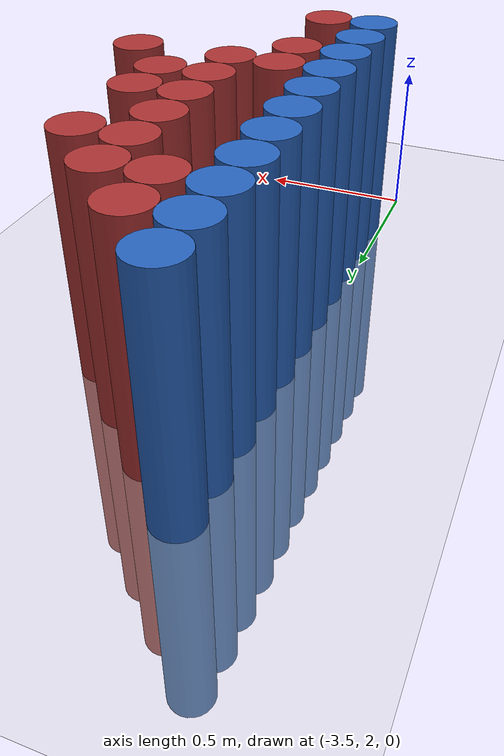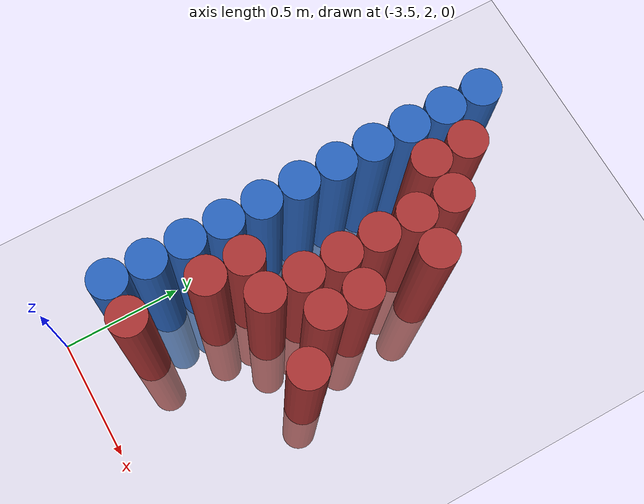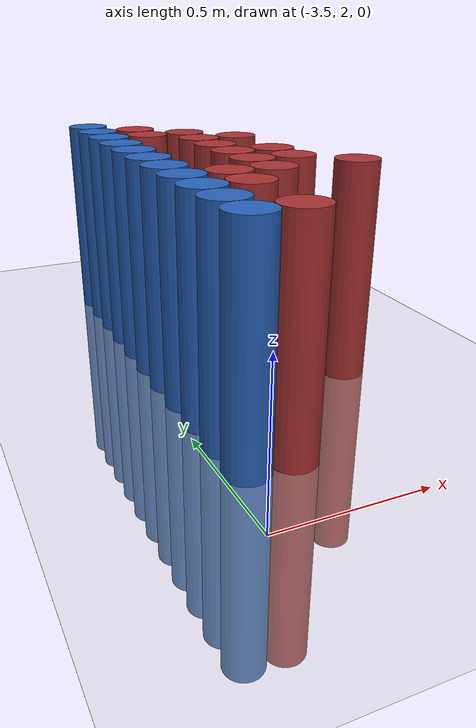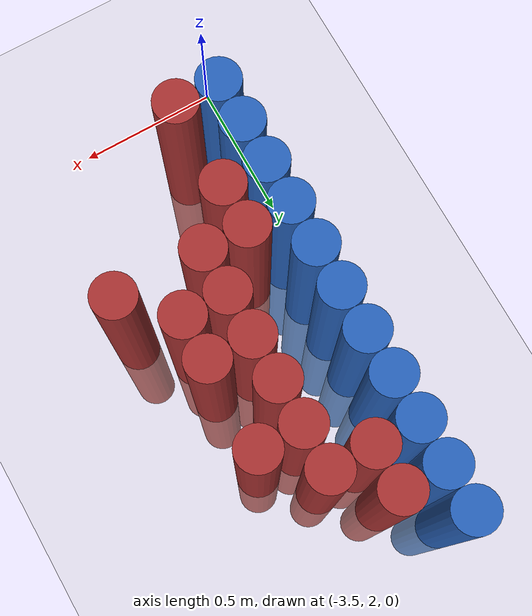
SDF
<sdf version="1.6">
 <world name="default">
  <model name="ground_plane">
   <static>1</static>
   <link name="link">
    <collision name="collision">
     <geometry><plane><normal>0 0 1</normal><size>100 100</size></plane></geometry>
     <surface><friction><ode><mu>100</mu><mu2>50</mu2></ode></friction></surface>
    </collision>
    <visual name="visual">
     <cast_shadows>0</cast_shadows>
     <geometry><plane><normal>0 0 1</normal><size>100 100</size></plane></geometry>
     <material>
      <script><uri>file://media/materials/scripts/gazebo.material</uri><name>Gazebo/Grey</name></script>
     </material>
    </visual>
   </link>
  </model>
  <model name="unit_cylinder_145">
   <static>1</static>
   <pose>-3.425000 2.275000 0.000000 0.000000 0.000000 0.000000</pose>
   <link name="link">
    <inertial>
     <mass>1</mass>
     <inertia><ixx>0.145833</ixx><ixy>0</ixy><ixz>0</ixz><iyy>0.145833</iyy><iyz>0</iyz><izz>0.125</izz></inertia>
    </inertial>
    <collision name="collision">
     <geometry><cylinder><radius>0.075000</radius><length>1.5</length></cylinder></geometry>
    </collision>
    <visual name="visual">
     <geometry><cylinder><radius>0.075000</radius><length>1.5</length></cylinder></geometry>
     <material>
      <ambient>0.152000 0.379000 0.720000 1</ambient>
      <diffuse>0.152000 0.379000 0.720000 1</diffuse>
     </material>
     <material>
      <script><name>Gazebo/Grey</name><uri>file://media/materials/scripts/gazebo.material</uri></script>
     </material>
    </visual>
   </link>
  </model>
  <model name="unit_cylinder_147">
   <static>1</static>
   <pose>-3.425000 2.425000 0.000000 0.000000 0.000000 0.000000</pose>
   <link name="link">
    <inertial>
     <mass>1</mass>
     <inertia><ixx>0.145833</ixx><ixy>0</ixy><ixz>0</ixz><iyy>0.145833</iyy><iyz>0</iyz><izz>0.125</izz></inertia>
    </inertial>
    <collision name="collision">
     <geometry><cylinder><radius>0.075000</radius><length>1.5</length></cylinder></geometry>
    </collision>
    <visual name="visual">
     <geometry><cylinder><radius>0.075000</radius><length>1.5</length></cylinder></geometry>
     <material>
      <ambient>0.152000 0.379000 0.720000 1</ambient>
      <diffuse>0.152000 0.379000 0.720000 1</diffuse>
     </material>
     <material>
      <script><name>Gazebo/Grey</name><uri>file://media/materials/scripts/gazebo.material</uri></script>
     </material>
    </visual>
   </link>
  </model>
  <model name="unit_cylinder_149">
   <static>1</static>
   <pose>-3.425000 2.575000 0.000000 0.000000 0.000000 0.000000</pose>
   <link name="link">
    <inertial>
     <mass>1</mass>
     <inertia><ixx>0.145833</ixx><ixy>0</ixy><ixz>0</ixz><iyy>0.145833</iyy><iyz>0</iyz><izz>0.125</izz></inertia>
    </inertial>
    <collision name="collision">
     <geometry><cylinder><radius>0.075000</radius><length>1.5</length></cylinder></geometry>
    </collision>
    <visual name="visual">
     <geometry><cylinder><radius>0.075000</radius><length>1.5</length></cylinder></geometry>
     <material>
      <ambient>0.152000 0.379000 0.720000 1</ambient>
      <diffuse>0.152000 0.379000 0.720000 1</diffuse>
     </material>
     <material>
      <script><name>Gazebo/Grey</name><uri>file://media/materials/scripts/gazebo.material</uri></script>
     </material>
    </visual>
   </link>
  </model>
  <model name="unit_cylinder_151">
   <static>1</static>
   <pose>-3.425000 2.725000 0.000000 0.000000 0.000000 0.000000</pose>
   <link name="link">
    <inertial>
     <mass>1</mass>
     <inertia><ixx>0.145833</ixx><ixy>0</ixy><ixz>0</ixz><iyy>0.145833</iyy><iyz>0</iyz><izz>0.125</izz></inertia>
    </inertial>
    <collision name="collision">
     <geometry><cylinder><radius>0.075000</radius><length>1.5</length></cylinder></geometry>
    </collision>
    <visual name="visual">
     <geometry><cylinder><radius>0.075000</radius><length>1.5</length></cylinder></geometry>
     <material>
      <ambient>0.152000 0.379000 0.720000 1</ambient>
      <diffuse>0.152000 0.379000 0.720000 1</diffuse>
     </material>
     <material>
      <script><name>Gazebo/Grey</name><uri>file://media/materials/scripts/gazebo.material</uri></script>
     </material>
    </visual>
   </link>
  </model>
  <model name="unit_cylinder_153">
   <static>1</static>
   <pose>-3.425000 2.875000 0.000000 0.000000 0.000000 0.000000</pose>
   <link name="link">
    <inertial>
     <mass>1</mass>
     <inertia><ixx>0.145833</ixx><ixy>0</ixy><ixz>0</ixz><iyy>0.145833</iyy><iyz>0</iyz><izz>0.125</izz></inertia>
    </inertial>
    <collision name="collision">
     <geometry><cylinder><radius>0.075000</radius><length>1.5</length></cylinder></geometry>
    </collision>
    <visual name="visual">
     <geometry><cylinder><radius>0.075000</radius><length>1.5</length></cylinder></geometry>
     <material>
      <ambient>0.152000 0.379000 0.720000 1</ambient>
      <diffuse>0.152000 0.379000 0.720000 1</diffuse>
     </material>
     <material>
      <script><name>Gazebo/Grey</name><uri>file://media/materials/scripts/gazebo.material</uri></script>
     </material>
    </visual>
   </link>
  </model>
  <model name="unit_cylinder_155">
   <static>1</static>
   <pose>-3.425000 3.025000 0.000000 0.000000 0.000000 0.000000</pose>
   <link name="link">
    <inertial>
     <mass>1</mass>
     <inertia><ixx>0.145833</ixx><ixy>0</ixy><ixz>0</ixz><iyy>0.145833</iyy><iyz>0</iyz><izz>0.125</izz></inertia>
    </inertial>
    <collision name="collision">
     <geometry><cylinder><radius>0.075000</radius><length>1.5</length></cylinder></geometry>
    </collision>
    <visual name="visual">
     <geometry><cylinder><radius>0.075000</radius><length>1.5</length></cylinder></geometry>
     <material>
      <ambient>0.152000 0.379000 0.720000 1</ambient>
      <diffuse>0.152000 0.379000 0.720000 1</diffuse>
     </material>
     <material>
      <script><name>Gazebo/Grey</name><uri>file://media/materials/scripts/gazebo.material</uri></script>
     </material>
    </visual>
   </link>
  </model>
  <model name="unit_cylinder_157">
   <static>1</static>
   <pose>-3.425000 3.175000 0.000000 0.000000 0.000000 0.000000</pose>
   <link name="link">
    <inertial>
     <mass>1</mass>
     <inertia><ixx>0.145833</ixx><ixy>0</ixy><ixz>0</ixz><iyy>0.145833</iyy><iyz>0</iyz><izz>0.125</izz></inertia>
    </inertial>
    <collision name="collision">
     <geometry><cylinder><radius>0.075000</radius><length>1.5</length></cylinder></geometry>
    </collision>
    <visual name="visual">
     <geometry><cylinder><radius>0.075000</radius><length>1.5</length></cylinder></geometry>
     <material>
      <ambient>0.152000 0.379000 0.720000 1</ambient>
      <diffuse>0.152000 0.379000 0.720000 1</diffuse>
     </material>
     <material>
      <script><name>Gazebo/Grey</name><uri>file://media/materials/scripts/gazebo.material</uri></script>
     </material>
    </visual>
   </link>
  </model>
  <model name="unit_cylinder_159">
   <static>1</static>
   <pose>-3.425000 3.325000 0.000000 0.000000 0.000000 0.000000</pose>
   <link name="link">
    <inertial>
     <mass>1</mass>
     <inertia><ixx>0.145833</ixx><ixy>0</ixy><ixz>0</ixz><iyy>0.145833</iyy><iyz>0</iyz><izz>0.125</izz></inertia>
    </inertial>
    <collision name="collision">
     <geometry><cylinder><radius>0.075000</radius><length>1.5</length></cylinder></geometry>
    </collision>
    <visual name="visual">
     <geometry><cylinder><radius>0.075000</radius><length>1.5</length></cylinder></geometry>
     <material>
      <ambient>0.152000 0.379000 0.720000 1</ambient>
      <diffuse>0.152000 0.379000 0.720000 1</diffuse>
     </material>
     <material>
      <script><name>Gazebo/Grey</name><uri>file://media/materials/scripts/gazebo.material</uri></script>
     </material>
    </visual>
   </link>
  </model>
  <model name="unit_cylinder_161">
   <static>1</static>
   <pose>-3.425000 3.475000 0.000000 0.000000 0.000000 0.000000</pose>
   <link name="link">
    <inertial>
     <mass>1</mass>
     <inertia><ixx>0.145833</ixx><ixy>0</ixy><ixz>0</ixz><iyy>0.145833</iyy><iyz>0</iyz><izz>0.125</izz></inertia>
    </inertial>
    <collision name="collision">
     <geometry><cylinder><radius>0.075000</radius><length>1.5</length></cylinder></geometry>
    </collision>
    <visual name="visual">
     <geometry><cylinder><radius>0.075000</radius><length>1.5</length></cylinder></geometry>
     <material>
      <ambient>0.152000 0.379000 0.720000 1</ambient>
      <diffuse>0.152000 0.379000 0.720000 1</diffuse>
     </material>
     <material>
      <script><name>Gazebo/Grey</name><uri>file://media/materials/scripts/gazebo.material</uri></script>
     </material>
    </visual>
   </link>
  </model>
  <model name="unit_cylinder_163">
   <static>1</static>
   <pose>-3.425000 3.625000 0.000000 0.000000 0.000000 0.000000</pose>
   <link name="link">
    <inertial>
     <mass>1</mass>
     <inertia><ixx>0.145833</ixx><ixy>0</ixy><ixz>0</ixz><iyy>0.145833</iyy><iyz>0</iyz><izz>0.125</izz></inertia>
    </inertial>
    <collision name="collision">
     <geometry><cylinder><radius>0.075000</radius><length>1.5</length></cylinder></geometry>
    </collision>
    <visual name="visual">
     <geometry><cylinder><radius>0.075000</radius><length>1.5</length></cylinder></geometry>
     <material>
      <ambient>0.152000 0.379000 0.720000 1</ambient>
      <diffuse>0.152000 0.379000 0.720000 1</diffuse>
     </material>
     <material>
      <script><name>Gazebo/Grey</name><uri>file://media/materials/scripts/gazebo.material</uri></script>
     </material>
    </visual>
   </link>
  </model>
  <model name="unit_cylinder_165">
   <static>1</static>
   <pose>-3.425000 3.775000 0.000000 0.000000 0.000000 0.000000</pose>
   <link name="link">
    <inertial>
     <mass>1</mass>
     <inertia><ixx>0.145833</ixx><ixy>0</ixy><ixz>0</ixz><iyy>0.145833</iyy><iyz>0</iyz><izz>0.125</izz></inertia>
    </inertial>
    <collision name="collision">
     <geometry><cylinder><radius>0.075000</radius><length>1.5</length></cylinder></geometry>
    </collision>
    <visual name="visual">
     <geometry><cylinder><radius>0.075000</radius><length>1.5</length></cylinder></geometry>
     <material>
      <ambient>0.152000 0.379000 0.720000 1</ambient>
      <diffuse>0.152000 0.379000 0.720000 1</diffuse>
     </material>
     <material>
      <script><name>Gazebo/Grey</name><uri>file://media/materials/scripts/gazebo.material</uri></script>
     </material>
    </visual>
   </link>
  </model>
  <model name="unit_cylinder_236">
   <static>1</static>
   <pose>-3.425000 2.275000 0.000000 0.000000 0.000000 0.000000</pose>
   <link name="link">
    <inertial>
     <mass>1</mass>
     <inertia><ixx>0.145833</ixx><ixy>0</ixy><ixz>0</ixz><iyy>0.145833</iyy><iyz>0</iyz><izz>0.125</izz></inertia>
    </inertial>
    <collision name="collision">
     <geometry><cylinder><radius>0.075000</radius><length>1.5</length></cylinder></geometry>
    </collision>
    <visual name="visual">
     <geometry><cylinder><radius>0.075000</radius><length>1.5</length></cylinder></geometry>
     <material>
      <ambient>0.152000 0.379000 0.720000 1</ambient>
      <diffuse>0.152000 0.379000 0.720000 1</diffuse>
     </material>
     <material>
      <script><name>Gazebo/Grey</name><uri>file://media/materials/scripts/gazebo.material</uri></script>
     </material>
    </visual>
   </link>
  </model>
  <model name="unit_cylinder_237">
   <static>1</static>
   <pose>-3.425000 2.425000 0.000000 0.000000 0.000000 0.000000</pose>
   <link name="link">
    <inertial>
     <mass>1</mass>
     <inertia><ixx>0.145833</ixx><ixy>0</ixy><ixz>0</ixz><iyy>0.145833</iyy><iyz>0</iyz><izz>0.125</izz></inertia>
    </inertial>
    <collision name="collision">
     <geometry><cylinder><radius>0.075000</radius><length>1.5</length></cylinder></geometry>
    </collision>
    <visual name="visual">
     <geometry><cylinder><radius>0.075000</radius><length>1.5</length></cylinder></geometry>
     <material>
      <ambient>0.152000 0.379000 0.720000 1</ambient>
      <diffuse>0.152000 0.379000 0.720000 1</diffuse>
     </material>
     <material>
      <script><name>Gazebo/Grey</name><uri>file://media/materials/scripts/gazebo.material</uri></script>
     </material>
    </visual>
   </link>
  </model>
  <model name="unit_cylinder_238">
   <static>1</static>
   <pose>-3.425000 2.575000 0.000000 0.000000 0.000000 0.000000</pose>
   <link name="link">
    <inertial>
     <mass>1</mass>
     <inertia><ixx>0.145833</ixx><ixy>0</ixy><ixz>0</ixz><iyy>0.145833</iyy><iyz>0</iyz><izz>0.125</izz></inertia>
    </inertial>
    <collision name="collision">
     <geometry><cylinder><radius>0.075000</radius><length>1.5</length></cylinder></geometry>
    </collision>
    <visual name="visual">
     <geometry><cylinder><radius>0.075000</radius><length>1.5</length></cylinder></geometry>
     <material>
      <ambient>0.152000 0.379000 0.720000 1</ambient>
      <diffuse>0.152000 0.379000 0.720000 1</diffuse>
     </material>
     <material>
      <script><name>Gazebo/Grey</name><uri>file://media/materials/scripts/gazebo.material</uri></script>
     </material>
    </visual>
   </link>
  </model>
  <model name="unit_cylinder_239">
   <static>1</static>
   <pose>-3.425000 2.725000 0.000000 0.000000 0.000000 0.000000</pose>
   <link name="link">
    <inertial>
     <mass>1</mass>
     <inertia><ixx>0.145833</ixx><ixy>0</ixy><ixz>0</ixz><iyy>0.145833</iyy><iyz>0</iyz><izz>0.125</izz></inertia>
    </inertial>
    <collision name="collision">
     <geometry><cylinder><radius>0.075000</radius><length>1.5</length></cylinder></geometry>
    </collision>
    <visual name="visual">
     <geometry><cylinder><radius>0.075000</radius><length>1.5</length></cylinder></geometry>
     <material>
      <ambient>0.152000 0.379000 0.720000 1</ambient>
      <diffuse>0.152000 0.379000 0.720000 1</diffuse>
     </material>
     <material>
      <script><name>Gazebo/Grey</name><uri>file://media/materials/scripts/gazebo.material</uri></script>
     </material>
    </visual>
   </link>
  </model>
  <model name="unit_cylinder_240">
   <static>1</static>
   <pose>-3.425000 2.875000 0.000000 0.000000 0.000000 0.000000</pose>
   <link name="link">
    <inertial>
     <mass>1</mass>
     <inertia><ixx>0.145833</ixx><ixy>0</ixy><ixz>0</ixz><iyy>0.145833</iyy><iyz>0</iyz><izz>0.125</izz></inertia>
    </inertial>
    <collision name="collision">
     <geometry><cylinder><radius>0.075000</radius><length>1.5</length></cylinder></geometry>
    </collision>
    <visual name="visual">
     <geometry><cylinder><radius>0.075000</radius><length>1.5</length></cylinder></geometry>
     <material>
      <ambient>0.152000 0.379000 0.720000 1</ambient>
      <diffuse>0.152000 0.379000 0.720000 1</diffuse>
     </material>
     <material>
      <script><name>Gazebo/Grey</name><uri>file://media/materials/scripts/gazebo.material</uri></script>
     </material>
    </visual>
   </link>
  </model>
  <model name="unit_cylinder_241">
   <static>1</static>
   <pose>-3.425000 3.025000 0.000000 0.000000 0.000000 0.000000</pose>
   <link name="link">
    <inertial>
     <mass>1</mass>
     <inertia><ixx>0.145833</ixx><ixy>0</ixy><ixz>0</ixz><iyy>0.145833</iyy><iyz>0</iyz><izz>0.125</izz></inertia>
    </inertial>
    <collision name="collision">
     <geometry><cylinder><radius>0.075000</radius><length>1.5</length></cylinder></geometry>
    </collision>
    <visual name="visual">
     <geometry><cylinder><radius>0.075000</radius><length>1.5</length></cylinder></geometry>
     <material>
      <ambient>0.152000 0.379000 0.720000 1</ambient>
      <diffuse>0.152000 0.379000 0.720000 1</diffuse>
     </material>
     <material>
      <script><name>Gazebo/Grey</name><uri>file://media/materials/scripts/gazebo.material</uri></script>
     </material>
    </visual>
   </link>
  </model>
  <model name="unit_cylinder_242">
   <static>1</static>
   <pose>-3.425000 3.175000 0.000000 0.000000 0.000000 0.000000</pose>
   <link name="link">
    <inertial>
     <mass>1</mass>
     <inertia><ixx>0.145833</ixx><ixy>0</ixy><ixz>0</ixz><iyy>0.145833</iyy><iyz>0</iyz><izz>0.125</izz></inertia>
    </inertial>
    <collision name="collision">
     <geometry><cylinder><radius>0.075000</radius><length>1.5</length></cylinder></geometry>
    </collision>
    <visual name="visual">
     <geometry><cylinder><radius>0.075000</radius><length>1.5</length></cylinder></geometry>
     <material>
      <ambient>0.152000 0.379000 0.720000 1</ambient>
      <diffuse>0.152000 0.379000 0.720000 1</diffuse>
     </material>
     <material>
      <script><name>Gazebo/Grey</name><uri>file://media/materials/scripts/gazebo.material</uri></script>
     </material>
    </visual>
   </link>
  </model>
  <model name="unit_cylinder_243">
   <static>1</static>
   <pose>-3.425000 3.325000 0.000000 0.000000 0.000000 0.000000</pose>
   <link name="link">
    <inertial>
     <mass>1</mass>
     <inertia><ixx>0.145833</ixx><ixy>0</ixy><ixz>0</ixz><iyy>0.145833</iyy><iyz>0</iyz><izz>0.125</izz></inertia>
    </inertial>
    <collision name="collision">
     <geometry><cylinder><radius>0.075000</radius><length>1.5</length></cylinder></geometry>
    </collision>
    <visual name="visual">
     <geometry><cylinder><radius>0.075000</radius><length>1.5</length></cylinder></geometry>
     <material>
      <ambient>0.152000 0.379000 0.720000 1</ambient>
      <diffuse>0.152000 0.379000 0.720000 1</diffuse>
     </material>
     <material>
      <script><name>Gazebo/Grey</name><uri>file://media/materials/scripts/gazebo.material</uri></script>
     </material>
    </visual>
   </link>
  </model>
  <model name="unit_cylinder_244">
   <static>1</static>
   <pose>-3.425000 3.475000 0.000000 0.000000 0.000000 0.000000</pose>
   <link name="link">
    <inertial>
     <mass>1</mass>
     <inertia><ixx>0.145833</ixx><ixy>0</ixy><ixz>0</ixz><iyy>0.145833</iyy><iyz>0</iyz><izz>0.125</izz></inertia>
    </inertial>
    <collision name="collision">
     <geometry><cylinder><radius>0.075000</radius><length>1.5</length></cylinder></geometry>
    </collision>
    <visual name="visual">
     <geometry><cylinder><radius>0.075000</radius><length>1.5</length></cylinder></geometry>
     <material>
      <ambient>0.152000 0.379000 0.720000 1</ambient>
      <diffuse>0.152000 0.379000 0.720000 1</diffuse>
     </material>
     <material>
      <script><name>Gazebo/Grey</name><uri>file://media/materials/scripts/gazebo.material</uri></script>
     </material>
    </visual>
   </link>
  </model>
  <model name="unit_cylinder_245">
   <static>1</static>
   <pose>-3.425000 3.625000 0.000000 0.000000 0.000000 0.000000</pose>
   <link name="link">
    <inertial>
     <mass>1</mass>
     <inertia><ixx>0.145833</ixx><ixy>0</ixy><ixz>0</ixz><iyy>0.145833</iyy><iyz>0</iyz><izz>0.125</izz></inertia>
    </inertial>
    <collision name="collision">
     <geometry><cylinder><radius>0.075000</radius><length>1.5</length></cylinder></geometry>
    </collision>
    <visual name="visual">
     <geometry><cylinder><radius>0.075000</radius><length>1.5</length></cylinder></geometry>
     <material>
      <ambient>0.152000 0.379000 0.720000 1</ambient>
      <diffuse>0.152000 0.379000 0.720000 1</diffuse>
     </material>
     <material>
      <script><name>Gazebo/Grey</name><uri>file://media/materials/scripts/gazebo.material</uri></script>
     </material>
    </visual>
   </link>
  </model>
  <model name="unit_cylinder_267">
   <static>1</static>
   <pose>-3.275000 2.275000 0.000000 0.000000 0.000000 0.000000</pose>
   <link name="link">
    <inertial>
     <mass>1</mass>
     <inertia><ixx>0.145833</ixx><ixy>0</ixy><ixz>0</ixz><iyy>0.145833</iyy><iyz>0</iyz><izz>0.125</izz></inertia>
    </inertial>
    <collision name="collision">
     <geometry><cylinder><radius>0.075000</radius><length>1.5</length></cylinder></geometry>
    </collision>
    <visual name="visual">
     <geometry><cylinder><radius>0.075000</radius><length>1.5</length></cylinder></geometry>
     <material>
      <ambient>0.648000 0.192000 0.192000 1</ambient>
      <diffuse>0.648000 0.192000 0.192000 1</diffuse>
     </material>
     <material>
      <script><name>Gazebo/Grey</name><uri>file://media/materials/scripts/gazebo.material</uri></script>
     </material>
    </visual>
   </link>
  </model>
  <model name="unit_cylinder_268">
   <static>1</static>
   <pose>-3.275000 2.575000 0.000000 0.000000 0.000000 0.000000</pose>
   <link name="link">
    <inertial>
     <mass>1</mass>
     <inertia><ixx>0.145833</ixx><ixy>0</ixy><ixz>0</ixz><iyy>0.145833</iyy><iyz>0</iyz><izz>0.125</izz></inertia>
    </inertial>
    <collision name="collision">
     <geometry><cylinder><radius>0.075000</radius><length>1.5</length></cylinder></geometry>
    </collision>
    <visual name="visual">
     <geometry><cylinder><radius>0.075000</radius><length>1.5</length></cylinder></geometry>
     <material>
      <ambient>0.648000 0.192000 0.192000 1</ambient>
      <diffuse>0.648000 0.192000 0.192000 1</diffuse>
     </material>
     <material>
      <script><name>Gazebo/Grey</name><uri>file://media/materials/scripts/gazebo.material</uri></script>
     </material>
    </visual>
   </link>
  </model>
  <model name="unit_cylinder_269">
   <static>1</static>
   <pose>-3.275000 2.725000 0.000000 0.000000 0.000000 0.000000</pose>
   <link name="link">
    <inertial>
     <mass>1</mass>
     <inertia><ixx>0.145833</ixx><ixy>0</ixy><ixz>0</ixz><iyy>0.145833</iyy><iyz>0</iyz><izz>0.125</izz></inertia>
    </inertial>
    <collision name="collision">
     <geometry><cylinder><radius>0.075000</radius><length>1.5</length></cylinder></geometry>
    </collision>
    <visual name="visual">
     <geometry><cylinder><radius>0.075000</radius><length>1.5</length></cylinder></geometry>
     <material>
      <ambient>0.648000 0.192000 0.192000 1</ambient>
      <diffuse>0.648000 0.192000 0.192000 1</diffuse>
     </material>
     <material>
      <script><name>Gazebo/Grey</name><uri>file://media/materials/scripts/gazebo.material</uri></script>
     </material>
    </visual>
   </link>
  </model>
  <model name="unit_cylinder_270">
   <static>1</static>
   <pose>-3.275000 3.475000 0.000000 0.000000 0.000000 0.000000</pose>
   <link name="link">
    <inertial>
     <mass>1</mass>
     <inertia><ixx>0.145833</ixx><ixy>0</ixy><ixz>0</ixz><iyy>0.145833</iyy><iyz>0</iyz><izz>0.125</izz></inertia>
    </inertial>
    <collision name="collision">
     <geometry><cylinder><radius>0.075000</radius><length>1.5</length></cylinder></geometry>
    </collision>
    <visual name="visual">
     <geometry><cylinder><radius>0.075000</radius><length>1.5</length></cylinder></geometry>
     <material>
      <ambient>0.648000 0.192000 0.192000 1</ambient>
      <diffuse>0.648000 0.192000 0.192000 1</diffuse>
     </material>
     <material>
      <script><name>Gazebo/Grey</name><uri>file://media/materials/scripts/gazebo.material</uri></script>
     </material>
    </visual>
   </link>
  </model>
  <model name="unit_cylinder_271">
   <static>1</static>
   <pose>-3.275000 3.625000 0.000000 0.000000 0.000000 0.000000</pose>
   <link name="link">
    <inertial>
     <mass>1</mass>
     <inertia><ixx>0.145833</ixx><ixy>0</ixy><ixz>0</ixz><iyy>0.145833</iyy><iyz>0</iyz><izz>0.125</izz></inertia>
    </inertial>
    <collision name="collision">
     <geometry><cylinder><radius>0.075000</radius><length>1.5</length></cylinder></geometry>
    </collision>
    <visual name="visual">
     <geometry><cylinder><radius>0.075000</radius><length>1.5</length></cylinder></geometry>
     <material>
      <ambient>0.648000 0.192000 0.192000 1</ambient>
      <diffuse>0.648000 0.192000 0.192000 1</diffuse>
     </material>
     <material>
      <script><name>Gazebo/Grey</name><uri>file://media/materials/scripts/gazebo.material</uri></script>
     </material>
    </visual>
   </link>
  </model>
  <model name="unit_cylinder_280">
   <static>1</static>
   <pose>-3.125000 2.725000 0.000000 0.000000 0.000000 0.000000</pose>
   <link name="link">
    <inertial>
     <mass>1</mass>
     <inertia><ixx>0.145833</ixx><ixy>0</ixy><ixz>0</ixz><iyy>0.145833</iyy><iyz>0</iyz><izz>0.125</izz></inertia>
    </inertial>
    <collision name="collision">
     <geometry><cylinder><radius>0.075000</radius><length>1.5</length></cylinder></geometry>
    </collision>
    <visual name="visual">
     <geometry><cylinder><radius>0.075000</radius><length>1.5</length></cylinder></geometry>
     <material>
      <ambient>0.648000 0.192000 0.192000 1</ambient>
      <diffuse>0.648000 0.192000 0.192000 1</diffuse>
     </material>
     <material>
      <script><name>Gazebo/Grey</name><uri>file://media/materials/scripts/gazebo.material</uri></script>
     </material>
    </visual>
   </link>
  </model>
  <model name="unit_cylinder_281">
   <static>1</static>
   <pose>-3.125000 2.875000 0.000000 0.000000 0.000000 0.000000</pose>
   <link name="link">
    <inertial>
     <mass>1</mass>
     <inertia><ixx>0.145833</ixx><ixy>0</ixy><ixz>0</ixz><iyy>0.145833</iyy><iyz>0</iyz><izz>0.125</izz></inertia>
    </inertial>
    <collision name="collision">
     <geometry><cylinder><radius>0.075000</radius><length>1.5</length></cylinder></geometry>
    </collision>
    <visual name="visual">
     <geometry><cylinder><radius>0.075000</radius><length>1.5</length></cylinder></geometry>
     <material>
      <ambient>0.648000 0.192000 0.192000 1</ambient>
      <diffuse>0.648000 0.192000 0.192000 1</diffuse>
     </material>
     <material>
      <script><name>Gazebo/Grey</name><uri>file://media/materials/scripts/gazebo.material</uri></script>
     </material>
    </visual>
   </link>
  </model>
  <model name="unit_cylinder_282">
   <static>1</static>
   <pose>-3.125000 3.025000 0.000000 0.000000 0.000000 0.000000</pose>
   <link name="link">
    <inertial>
     <mass>1</mass>
     <inertia><ixx>0.145833</ixx><ixy>0</ixy><ixz>0</ixz><iyy>0.145833</iyy><iyz>0</iyz><izz>0.125</izz></inertia>
    </inertial>
    <collision name="collision">
     <geometry><cylinder><radius>0.075000</radius><length>1.5</length></cylinder></geometry>
    </collision>
    <visual name="visual">
     <geometry><cylinder><radius>0.075000</radius><length>1.5</length></cylinder></geometry>
     <material>
      <ambient>0.648000 0.192000 0.192000 1</ambient>
      <diffuse>0.648000 0.192000 0.192000 1</diffuse>
     </material>
     <material>
      <script><name>Gazebo/Grey</name><uri>file://media/materials/scripts/gazebo.material</uri></script>
     </material>
    </visual>
   </link>
  </model>
  <model name="unit_cylinder_283">
   <static>1</static>
   <pose>-3.125000 3.175000 0.000000 0.000000 0.000000 0.000000</pose>
   <link name="link">
    <inertial>
     <mass>1</mass>
     <inertia><ixx>0.145833</ixx><ixy>0</ixy><ixz>0</ixz><iyy>0.145833</iyy><iyz>0</iyz><izz>0.125</izz></inertia>
    </inertial>
    <collision name="collision">
     <geometry><cylinder><radius>0.075000</radius><length>1.5</length></cylinder></geometry>
    </collision>
    <visual name="visual">
     <geometry><cylinder><radius>0.075000</radius><length>1.5</length></cylinder></geometry>
     <material>
      <ambient>0.648000 0.192000 0.192000 1</ambient>
      <diffuse>0.648000 0.192000 0.192000 1</diffuse>
     </material>
     <material>
      <script><name>Gazebo/Grey</name><uri>file://media/materials/scripts/gazebo.material</uri></script>
     </material>
    </visual>
   </link>
  </model>
  <model name="unit_cylinder_284">
   <static>1</static>
   <pose>-3.125000 3.325000 0.000000 0.000000 0.000000 0.000000</pose>
   <link name="link">
    <inertial>
     <mass>1</mass>
     <inertia><ixx>0.145833</ixx><ixy>0</ixy><ixz>0</ixz><iyy>0.145833</iyy><iyz>0</iyz><izz>0.125</izz></inertia>
    </inertial>
    <collision name="collision">
     <geometry><cylinder><radius>0.075000</radius><length>1.5</length></cylinder></geometry>
    </collision>
    <visual name="visual">
     <geometry><cylinder><radius>0.075000</radius><length>1.5</length></cylinder></geometry>
     <material>
      <ambient>0.648000 0.192000 0.192000 1</ambient>
      <diffuse>0.648000 0.192000 0.192000 1</diffuse>
     </material>
     <material>
      <script><name>Gazebo/Grey</name><uri>file://media/materials/scripts/gazebo.material</uri></script>
     </material>
    </visual>
   </link>
  </model>
  <model name="unit_cylinder_285">
   <static>1</static>
   <pose>-3.125000 3.475000 0.000000 0.000000 0.000000 0.000000</pose>
   <link name="link">
    <inertial>
     <mass>1</mass>
     <inertia><ixx>0.145833</ixx><ixy>0</ixy><ixz>0</ixz><iyy>0.145833</iyy><iyz>0</iyz><izz>0.125</izz></inertia>
    </inertial>
    <collision name="collision">
     <geometry><cylinder><radius>0.075000</radius><length>1.5</length></cylinder></geometry>
    </collision>
    <visual name="visual">
     <geometry><cylinder><radius>0.075000</radius><length>1.5</length></cylinder></geometry>
     <material>
      <ambient>0.648000 0.192000 0.192000 1</ambient>
      <diffuse>0.648000 0.192000 0.192000 1</diffuse>
     </material>
     <material>
      <script><name>Gazebo/Grey</name><uri>file://media/materials/scripts/gazebo.material</uri></script>
     </material>
    </visual>
   </link>
  </model>
  <model name="unit_cylinder_289">
   <static>1</static>
   <pose>-2.975000 2.875000 0.000000 0.000000 0.000000 0.000000</pose>
   <link name="link">
    <inertial>
     <mass>1</mass>
     <inertia><ixx>0.145833</ixx><ixy>0</ixy><ixz>0</ixz><iyy>0.145833</iyy><iyz>0</iyz><izz>0.125</izz></inertia>
    </inertial>
    <collision name="collision">
     <geometry><cylinder><radius>0.075000</radius><length>1.5</length></cylinder></geometry>
    </collision>
    <visual name="visual">
     <geometry><cylinder><radius>0.075000</radius><length>1.5</length></cylinder></geometry>
     <material>
      <ambient>0.648000 0.192000 0.192000 1</ambient>
      <diffuse>0.648000 0.192000 0.192000 1</diffuse>
     </material>
     <material>
      <script><name>Gazebo/Grey</name><uri>file://media/materials/scripts/gazebo.material</uri></script>
     </material>
    </visual>
   </link>
  </model>
  <model name="unit_cylinder_290">
   <static>1</static>
   <pose>-2.975000 3.025000 0.000000 0.000000 0.000000 0.000000</pose>
   <link name="link">
    <inertial>
     <mass>1</mass>
     <inertia><ixx>0.145833</ixx><ixy>0</ixy><ixz>0</ixz><iyy>0.145833</iyy><iyz>0</iyz><izz>0.125</izz></inertia>
    </inertial>
    <collision name="collision">
     <geometry><cylinder><radius>0.075000</radius><length>1.5</length></cylinder></geometry>
    </collision>
    <visual name="visual">
     <geometry><cylinder><radius>0.075000</radius><length>1.5</length></cylinder></geometry>
     <material>
      <ambient>0.648000 0.192000 0.192000 1</ambient>
      <diffuse>0.648000 0.192000 0.192000 1</diffuse>
     </material>
     <material>
      <script><name>Gazebo/Grey</name><uri>file://media/materials/scripts/gazebo.material</uri></script>
     </material>
    </visual>
   </link>
  </model>
  <model name="unit_cylinder_291">
   <static>1</static>
   <pose>-2.975000 3.325000 0.000000 0.000000 0.000000 0.000000</pose>
   <link name="link">
    <inertial>
     <mass>1</mass>
     <inertia><ixx>0.145833</ixx><ixy>0</ixy><ixz>0</ixz><iyy>0.145833</iyy><iyz>0</iyz><izz>0.125</izz></inertia>
    </inertial>
    <collision name="collision">
     <geometry><cylinder><radius>0.075000</radius><length>1.5</length></cylinder></geometry>
    </collision>
    <visual name="visual">
     <geometry><cylinder><radius>0.075000</radius><length>1.5</length></cylinder></geometry>
     <material>
      <ambient>0.648000 0.192000 0.192000 1</ambient>
      <diffuse>0.648000 0.192000 0.192000 1</diffuse>
     </material>
     <material>
      <script><name>Gazebo/Grey</name><uri>file://media/materials/scripts/gazebo.material</uri></script>
     </material>
    </visual>
   </link>
  </model>
  <model name="unit_cylinder_295">
   <static>1</static>
   <pose>-2.825000 2.725000 0.000000 0.000000 0.000000 0.000000</pose>
   <link name="link">
    <inertial>
     <mass>1</mass>
     <inertia><ixx>0.145833</ixx><ixy>0</ixy><ixz>0</ixz><iyy>0.145833</iyy><iyz>0</iyz><izz>0.125</izz></inertia>
    </inertial>
    <collision name="collision">
     <geometry><cylinder><radius>0.075000</radius><length>1.5</length></cylinder></geometry>
    </collision>
    <visual name="visual">
     <geometry><cylinder><radius>0.075000</radius><length>1.5</length></cylinder></geometry>
     <material>
      <ambient>0.648000 0.192000 0.192000 1</ambient>
      <diffuse>0.648000 0.192000 0.192000 1</diffuse>
     </material>
     <material>
      <script><name>Gazebo/Grey</name><uri>file://media/materials/scripts/gazebo.material</uri></script>
     </material>
    </visual>
   </link>
  </model>
 </world>
</sdf>
